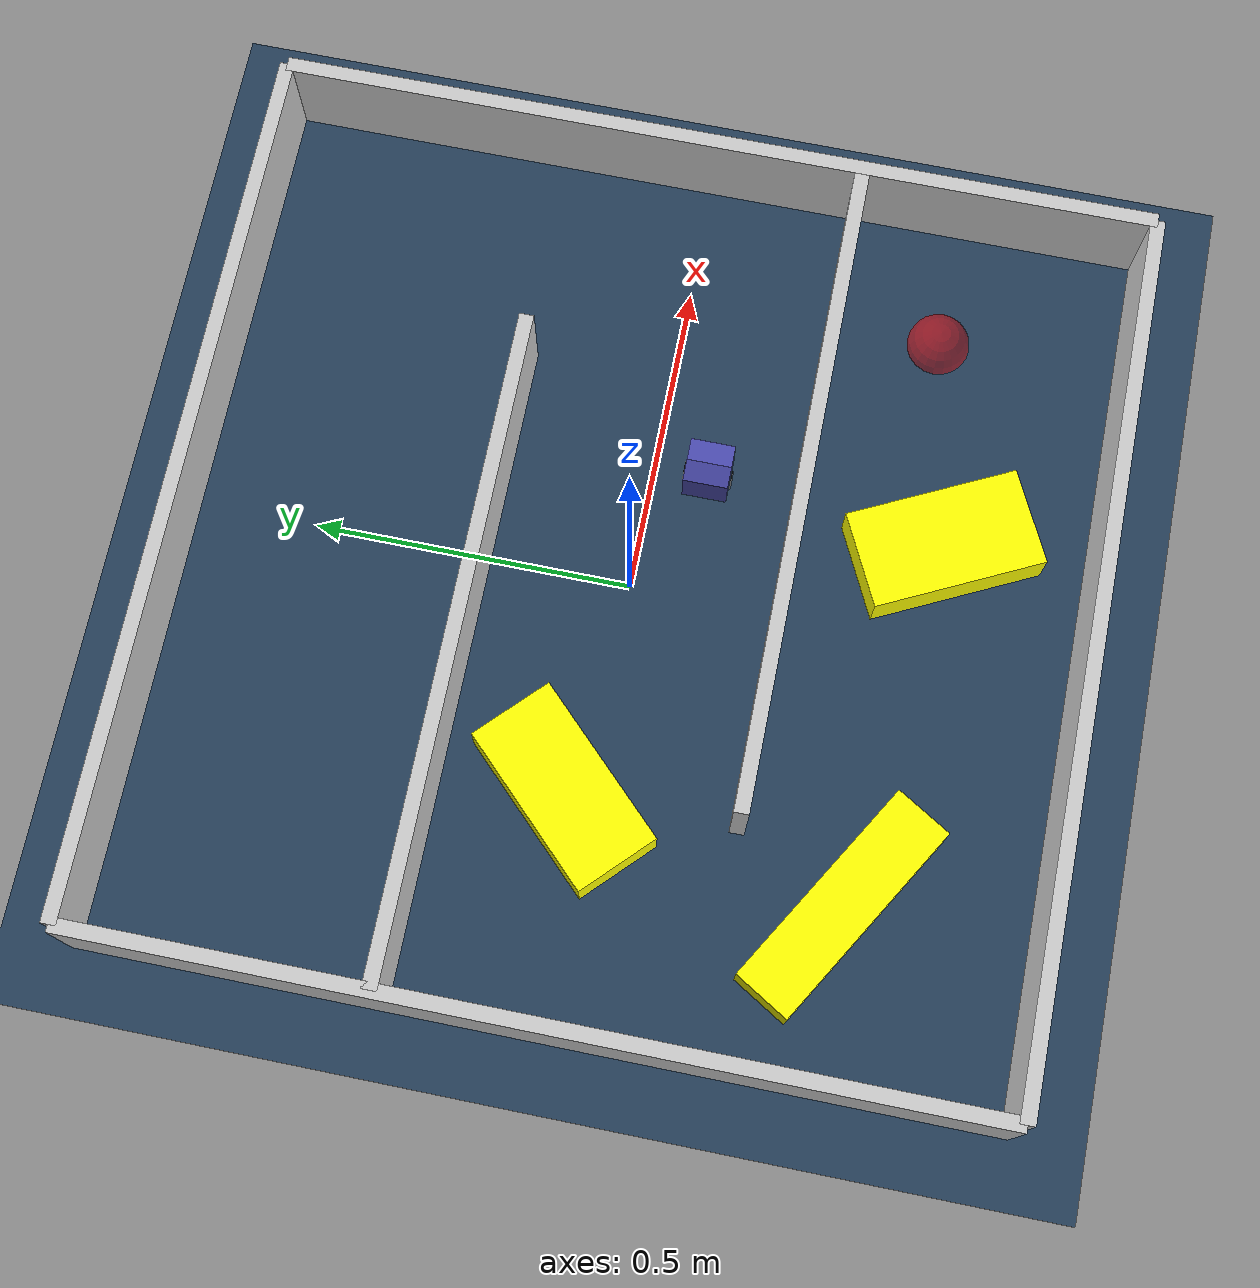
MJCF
<?xml version='1.0' encoding='utf-8'?>
<mujoco model="generated_environment">
  <option timestep="0.002" integrator="implicitfast" cone="elliptic" iterations="100" gravity="0 0 -9.81" />
  <default>
    <geom density="1" />
  </default>
  <asset>
    <texture builtin="gradient" height="3072" rgb1="0.3 0.5 0.7" rgb2="0 0 0" type="skybox" width="512" />
    <texture builtin="checker" height="300" mark="edge" markrgb="0.8 0.8 0.8" name="groundplane" rgb1="0.2 0.3 0.4" rgb2="0.1 0.2 0.3" type="2d" width="300" />
    <material name="groundplane" reflectance="0.2" texrepeat="5 5" texture="groundplane" texuniform="true" />
    <material name="robot" rgba="1.0 1.0 0.0 1.0" />
  </asset>
  <worldbody>
    <light dir="0 0 -1" directional="true" pos="0 0 1.5" />
    <geom condim="4" friction="0.5 0.005 0.001" material="groundplane" name="floor" size="0 0 0.05" type="plane" />
    <body name="walls">
      <geom name="wall_1" condim="4" pos="-0.699000 0.000000 0.080000" rgba="0.800000011920929 0.800000011920929 0.800000011920929 1.0" size="0.011650 0.699000 0.080000" type="box" />
      <geom name="wall_2" condim="4" pos="0.699000 0.000000 0.080000" rgba="0.800000011920929 0.800000011920929 0.800000011920929 1.0" size="0.011650 0.699000 0.080000" type="box" />
      <geom name="wall_3" condim="4" pos="0.000000 -0.699000 0.080000" rgba="0.800000011920929 0.800000011920929 0.800000011920929 1.0" size="0.699000 0.011650 0.080000" type="box" />
      <geom name="wall_4" condim="4" pos="0.000000 0.699000 0.080000" rgba="0.800000011920929 0.800000011920929 0.800000011920929 1.0" size="0.699000 0.011650 0.080000" type="box" />
      <geom name="wall_5" condim="4" pos="0.174750 -0.233000 0.080000" rgba="0.800000011920929 0.800000011920929 0.800000011920929 1.0" size="0.524250 0.011650 0.080000" type="box" />
      <geom name="wall_6" condim="4" pos="-0.174750 0.233000 0.080000" rgba="0.800000011920929 0.800000011920929 0.800000011920929 1.0" size="0.524250 0.011650 0.080000" type="box" />
    </body>
    <body name="car" pos="0.19499999999999995 -0.08499999999999985 0.010000">
      <freejoint name="car_freejoint" />
      <inertial pos="0.000000 0 0.037500" mass="0.350000" diaginertia="0.000266 0.000266 0.000286" />
      <geom name="front_chassis_collision" type="box" pos="0.017500 0 0.037500" size="0.017500 0.035000 0.032500" rgba="0.3 0.3 0.7 1" />
      <geom name="rear_chassis_collision" type="box" pos="-0.017500 0 0.037500" size="0.017500 0.035000 0.032500" rgba="0.25 0.25 0.6 1" />
      <geom name="front_marker" type="box" pos="0.034000 0 0.050500" size="0.002000 0.015000 0.010000" rgba="1.0 0.2 0.2 1" contype="0" conaffinity="0" />
      <body name="rear_support_body" pos="-0.030000 0.000000 0.002500">
        <joint name="rear_caster_joint" type="ball" damping="0.0001" />
        <inertial pos="0 0 0" mass="0.025000" diaginertia="0.000001 0.000001 0.000001" />
        <geom name="rear_support" type="sphere" pos="0 0 0" size="0.002500" friction="0.000000 0.000000 0.000000" rgba="0.7 0.1 0.1 1" />
      </body>
      <body name="front_support_body" pos="0.030000 0.000000 0.002500">
        <joint name="front_caster_joint" type="ball" damping="0.0001" />
        <inertial pos="0 0 0" mass="0.025000" diaginertia="0.000001 0.000001 0.000001" />
        <geom name="front_support" type="sphere" pos="0 0 0" size="0.002500" friction="0.000000 0.000000 0.000000" rgba="0.1 0.7 0.1 1" />
      </body>
      <body name="left_wheel" pos="0.000000 0.037500 0.015000">
        <inertial pos="0 0 0" mass="0.050000" diaginertia="0.000003 0.000006 0.000003" />
        <joint name="left_wheel_joint" type="hinge" axis="0 1 0" />
        <geom name="left_wheel_collision" type="cylinder" size="0.015000 0.000500" euler="90 0 0" rgba="0.1 0.1 0.1 1" />
      </body>
      <body name="right_wheel" pos="0.000000 -0.037500 0.015000">
        <inertial pos="0 0 0" mass="0.050000" diaginertia="0.000003 0.000006 0.000003" />
        <joint name="right_wheel_joint" type="hinge" axis="0 1 0" />
        <geom name="right_wheel_collision" type="cylinder" size="0.015000 0.000500" euler="90 0 0" rgba="0.1 0.1 0.1 1" />
      </body>
    </body>
    <body name="obstacle_0_movable">
      <geom name="obstacle_0_movable" condim="4" pos="0.15120968791646483 -0.46324826700718347 0.035" euler="0 0 26.307360700737917" friction="0.0 0.005 0.001" rgba="1 1 0 1" size="0.07709585367273264 0.13762506728380208 0.035" type="box" mass="0.1" />
      <joint type="free" />
    </body>
    <body name="obstacle_1_movable">
      <geom name="obstacle_1_movable" condim="4" pos="-0.43198818442106696 -0.40464017475229286 0.035" euler="0 0 329.11911956240004" friction="0.0 0.005 0.001" rgba="1 1 0 1" size="0.1825528448770023 0.04875036141040978 0.035" type="box" mass="0.1" />
      <joint type="free" />
    </body>
    <body name="obstacle_2_movable">
      <geom name="obstacle_2_movable" condim="4" pos="-0.342552335916743 0.031927524290287 0.035" euler="0 0 45.69183201944511" friction="0.0 0.005 0.001" rgba="1 1 0 1" size="0.1431025289615368 0.06968816991117416 0.035" type="box" mass="0.1" />
      <joint type="free" />
    </body>
    <site name="goal" type="sphere" pos="0.4950000000000002 -0.40500000000000014 0.0" size="0.05" rgba="1 0 0 0.5" />
  </worldbody>
  <actuator>
    <velocity name="left_wheel_drive" joint="left_wheel_joint" ctrlrange="-25.000000 25.000000" kv="0.750000" forcerange="-0.300000 0.300000" />
    <velocity name="right_wheel_drive" joint="right_wheel_joint" ctrlrange="-25.000000 25.000000" kv="0.750000" forcerange="-0.300000 0.300000" />
  </actuator>
</mujoco>
